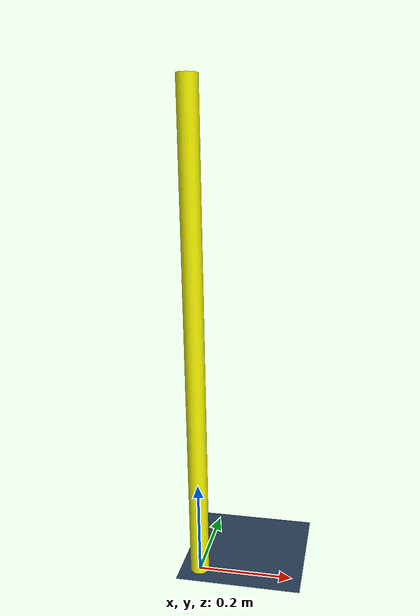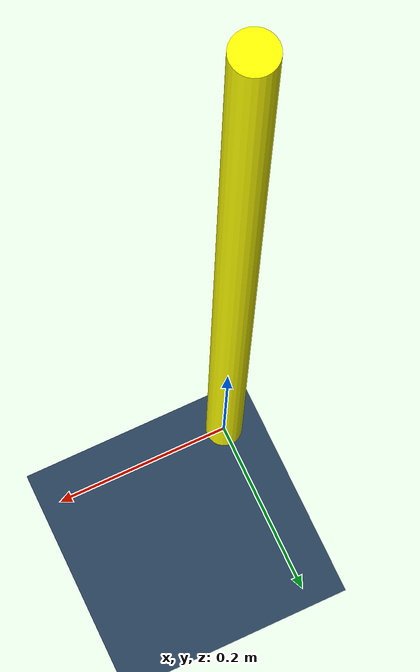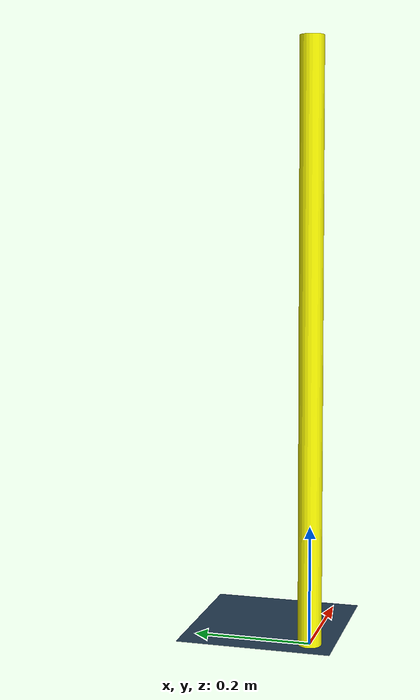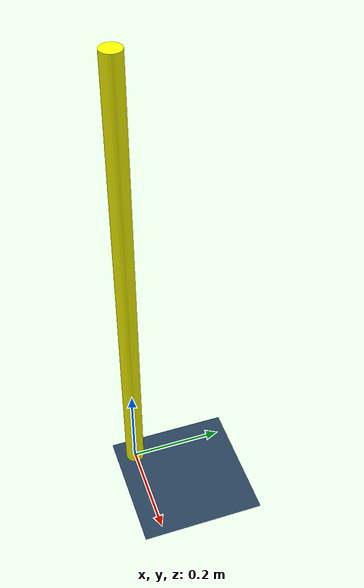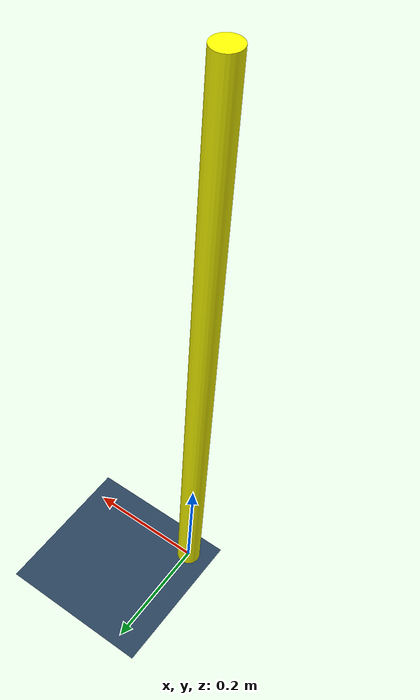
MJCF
<mujoco model="table">
    <compiler angle="radian"
              inertiafromgeom="true"/>
    <option timestep="2e-3"
            iterations="10"
            tolerance="1e-10"
            impratio="20"/>
    <size njmax="600" nconmax="150" nstack="300000"/>

    <visual>
        <map fogstart="3" fogend="5" znear="0.05"/>
        <quality shadowsize="2048"/>
        <scale framelength="0.1"
               framewidth="0.005"
               contactwidth="0.1"
               contactheight="0.005"
               forcewidth="0.01"
               />
        <global offwidth="1280" offheight="720"/> <!-- for larger image rendering -->
    </visual>

    <asset>
        <texture name="./textures/floor_tex"   type="2d"        builtin="checker" rgb1=".2 .3 .4" rgb2=".1 .2 .3" width="100" height="100" />
        <texture name="metal"        type="cube"     file="textures/metal2.png"/>
        <!--Materials-->
        <material name='floor_mat'      texture="./textures/floor_tex"  shininess="0.8" texrepeat="10 10" specular="0.7"  reflectance="0.5" />
        <material name="bench_mat"      texture="metal"   shininess="0.1" specular="0.5" reflectance="0.2"/>
    </asset>

    <worldbody>
        <body name="pole_link" pos="0 0 0">
            <geom type="cylinder" size="0.02 0.5" pos="0 0 0.5" rgba="1 1 0 1"/>
        </body>

        <!--Lighting parameters-->
        <light name="light3" mode="targetbody" target="pole_link" directional="true" pos="1 -1 3" />

        <!--Camera parameters-->
        <camera name="my_camera" pos="2 -2 3" xyaxes="0.658 0.728 0 -0.487 0.458 0.743"/>

        <!--Floor Property-->
        <geom name='floor' material="floor_mat" pos='0 0 0' size='2.5 2.5 0.1'  type='plane' />

    </worldbody>

</mujoco>
